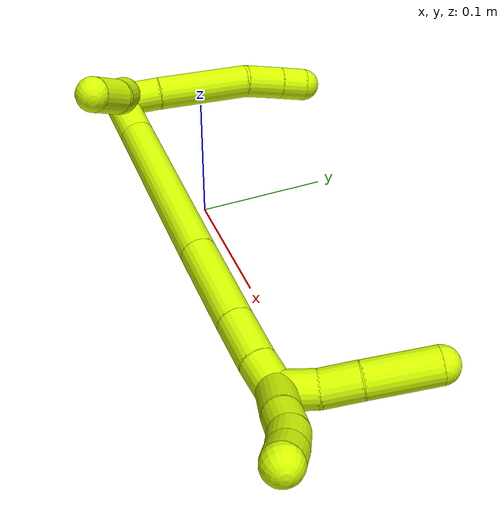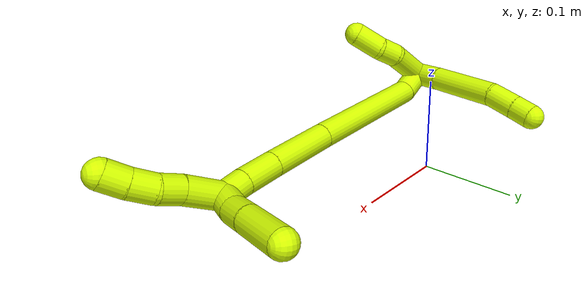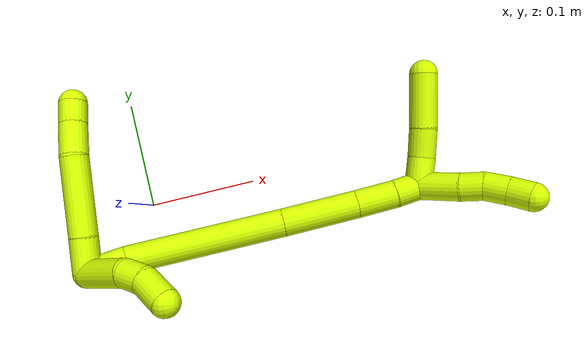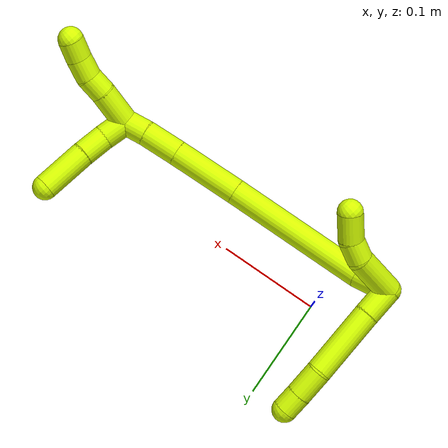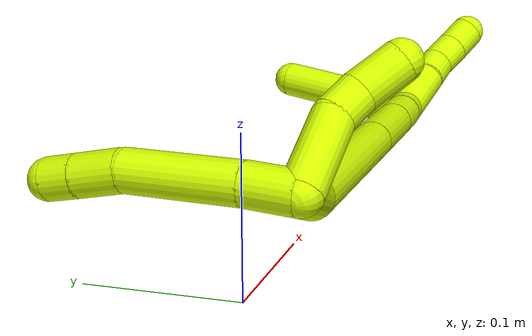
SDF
<sdf version="1.7">
 <world name="default">
  <model name="15">
   <static>0</static>
   <link name="15">
    <collision name="collision-cylinder-e_1_2_8">
     <pose>0.004596 0.014716 -0.001578 -1.67763 0.301126 -0.334545</pose>
     <geometry><cylinder><radius>0.0125</radius><length>0.030995</length></cylinder></geometry>
     <surface>
      <friction><ode><mu>1.16</mu><mu2>1.16</mu2><slip1>0</slip1><slip2>0</slip2></ode></friction>
      <contact><ode><kp>1e+06</kp><kd>1</kd><max_vel>0</max_vel><min_depth>0.001</min_depth></ode></contact>
     </surface>
    </collision>
    <visual name="visual-cylinder-e_1_2_8">
     <pose>0.004596 0.014716 -0.001578 -1.67763 0.301126 -0.334545</pose>
     <geometry><cylinder><radius>0.0125</radius><length>0.030995</length></cylinder></geometry>
     <material><ambient>0.835294 1 0 1</ambient></material>
    </visual>
    <collision name="collision-cylinder-e_2_8_9">
     <pose>0.021019 0.061994 -0.00783 -1.71336 0.345099 -0.396876</pose>
     <geometry><cylinder><radius>0.0125</radius><length>0.069915</length></cylinder></geometry>
     <surface>
      <friction><ode><mu>1.16</mu><mu2>1.16</mu2><slip1>0</slip1><slip2>0</slip2></ode></friction>
      <contact><ode><kp>1e+06</kp><kd>1</kd><max_vel>0</max_vel><min_depth>0.001</min_depth></ode></contact>
     </surface>
    </collision>
    <visual name="visual-cylinder-e_2_8_9">
     <pose>0.021019 0.061994 -0.00783 -1.71336 0.345099 -0.396876</pose>
     <geometry><cylinder><radius>0.0125</radius><length>0.069915</length></cylinder></geometry>
     <material><ambient>0.835294 1 0 1</ambient></material>
    </visual>
    <collision name="collision-cylinder-e_3_9_10">
     <pose>0.040505 0.106696 -0.01476 -1.75457 0.555347 -0.660668</pose>
     <geometry><cylinder><radius>0.0125</radius><length>0.029061</length></cylinder></geometry>
     <surface>
      <friction><ode><mu>1.16</mu><mu2>1.16</mu2><slip1>0</slip1><slip2>0</slip2></ode></friction>
      <contact><ode><kp>1e+06</kp><kd>1</kd><max_vel>0</max_vel><min_depth>0.001</min_depth></ode></contact>
     </surface>
    </collision>
    <visual name="visual-cylinder-e_3_9_10">
     <pose>0.040505 0.106696 -0.01476 -1.75457 0.555347 -0.660668</pose>
     <geometry><cylinder><radius>0.0125</radius><length>0.029061</length></cylinder></geometry>
     <material><ambient>0.835294 1 0 1</ambient></material>
    </visual>
    <collision name="collision-cylinder-e_4_10_6">
     <pose>0.053501 0.127208 -0.018327 -1.72608 0.561751 -0.650418</pose>
     <geometry><cylinder><radius>0.0125</radius><length>0.020029</length></cylinder></geometry>
     <surface>
      <friction><ode><mu>1.16</mu><mu2>1.16</mu2><slip1>0</slip1><slip2>0</slip2></ode></friction>
      <contact><ode><kp>1e+06</kp><kd>1</kd><max_vel>0</max_vel><min_depth>0.001</min_depth></ode></contact>
     </surface>
    </collision>
    <visual name="visual-cylinder-e_4_10_6">
     <pose>0.053501 0.127208 -0.018327 -1.72608 0.561751 -0.650418</pose>
     <geometry><cylinder><radius>0.0125</radius><length>0.020029</length></cylinder></geometry>
     <material><ambient>0.835294 1 0 1</ambient></material>
    </visual>
    <collision name="collision-cylinder-e_1_2_11">
     <pose>-0.009485 0.005227 0.022145 -0.231804 -0.394942 0.046579</pose>
     <geometry><cylinder><radius>0.0125</radius><length>0.049303</length></cylinder></geometry>
     <surface>
      <friction><ode><mu>1.16</mu><mu2>1.16</mu2><slip1>0</slip1><slip2>0</slip2></ode></friction>
      <contact><ode><kp>1e+06</kp><kd>1</kd><max_vel>0</max_vel><min_depth>0.001</min_depth></ode></contact>
     </surface>
    </collision>
    <visual name="visual-cylinder-e_1_2_11">
     <pose>-0.009485 0.005227 0.022145 -0.231804 -0.394942 0.046579</pose>
     <geometry><cylinder><radius>0.0125</radius><length>0.049303</length></cylinder></geometry>
     <material><ambient>0.835294 1 0 1</ambient></material>
    </visual>
    <collision name="collision-cylinder-e_2_11_12">
     <pose>-0.022777 0.009145 0.054236 0.130945 -0.362756 -0.024048</pose>
     <geometry><cylinder><radius>0.0125</radius><length>0.02146</length></cylinder></geometry>
     <surface>
      <friction><ode><mu>1.16</mu><mu2>1.16</mu2><slip1>0</slip1><slip2>0</slip2></ode></friction>
      <contact><ode><kp>1e+06</kp><kd>1</kd><max_vel>0</max_vel><min_depth>0.001</min_depth></ode></contact>
     </surface>
    </collision>
    <visual name="visual-cylinder-e_2_11_12">
     <pose>-0.022777 0.009145 0.054236 0.130945 -0.362756 -0.024048</pose>
     <geometry><cylinder><radius>0.0125</radius><length>0.02146</length></cylinder></geometry>
     <material><ambient>0.835294 1 0 1</ambient></material>
    </visual>
    <collision name="collision-cylinder-e_3_12_5">
     <pose>-0.034575 0.002645 0.075269 0.437811 -0.578316 -0.132175</pose>
     <geometry><cylinder><radius>0.0125</radius><length>0.029237</length></cylinder></geometry>
     <surface>
      <friction><ode><mu>1.16</mu><mu2>1.16</mu2><slip1>0</slip1><slip2>0</slip2></ode></friction>
      <contact><ode><kp>1e+06</kp><kd>1</kd><max_vel>0</max_vel><min_depth>0.001</min_depth></ode></contact>
     </surface>
    </collision>
    <visual name="visual-cylinder-e_3_12_5">
     <pose>-0.034575 0.002645 0.075269 0.437811 -0.578316 -0.132175</pose>
     <geometry><cylinder><radius>0.0125</radius><length>0.029237</length></cylinder></geometry>
     <material><ambient>0.835294 1 0 1</ambient></material>
    </visual>
    <collision name="collision-cylinder-e_1_2_13">
     <pose>0.01039 0.001752 0.013626 -0.127869 0.647533 -0.042961</pose>
     <geometry><cylinder><radius>0.0125</radius><length>0.034449</length></cylinder></geometry>
     <surface>
      <friction><ode><mu>1.16</mu><mu2>1.16</mu2><slip1>0</slip1><slip2>0</slip2></ode></friction>
      <contact><ode><kp>1e+06</kp><kd>1</kd><max_vel>0</max_vel><min_depth>0.001</min_depth></ode></contact>
     </surface>
    </collision>
    <visual name="visual-cylinder-e_1_2_13">
     <pose>0.01039 0.001752 0.013626 -0.127869 0.647533 -0.042961</pose>
     <geometry><cylinder><radius>0.0125</radius><length>0.034449</length></cylinder></geometry>
     <material><ambient>0.835294 1 0 1</ambient></material>
    </visual>
    <collision name="collision-cylinder-e_2_13_14">
     <pose>0.042258 0.012501 0.093287 -0.135418 0.31176 -0.021313</pose>
     <geometry><cylinder><radius>0.0125</radius><length>0.140041</length></cylinder></geometry>
     <surface>
      <friction><ode><mu>1.16</mu><mu2>1.16</mu2><slip1>0</slip1><slip2>0</slip2></ode></friction>
      <contact><ode><kp>1e+06</kp><kd>1</kd><max_vel>0</max_vel><min_depth>0.001</min_depth></ode></contact>
     </surface>
    </collision>
    <visual name="visual-cylinder-e_2_13_14">
     <pose>0.042258 0.012501 0.093287 -0.135418 0.31176 -0.021313</pose>
     <geometry><cylinder><radius>0.0125</radius><length>0.140041</length></cylinder></geometry>
     <material><ambient>0.835294 1 0 1</ambient></material>
    </visual>
    <collision name="collision-cylinder-e_3_14_15">
     <pose>0.074442 0.026029 0.190717 -0.143312 0.325508 -0.023572</pose>
     <geometry><cylinder><radius>0.0125</radius><length>0.066957</length></cylinder></geometry>
     <surface>
      <friction><ode><mu>1.16</mu><mu2>1.16</mu2><slip1>0</slip1><slip2>0</slip2></ode></friction>
      <contact><ode><kp>1e+06</kp><kd>1</kd><max_vel>0</max_vel><min_depth>0.001</min_depth></ode></contact>
     </surface>
    </collision>
    <visual name="visual-cylinder-e_3_14_15">
     <pose>0.074442 0.026029 0.190717 -0.143312 0.325508 -0.023572</pose>
     <geometry><cylinder><radius>0.0125</radius><length>0.066957</length></cylinder></geometry>
     <material><ambient>0.835294 1 0 1</ambient></material>
    </visual>
    <collision name="collision-cylinder-e_4_15_16">
     <pose>0.091052 0.033171 0.238705 -0.156105 0.337993 -0.026688</pose>
     <geometry><cylinder><radius>0.0125</radius><length>0.035608</length></cylinder></geometry>
     <surface>
      <friction><ode><mu>1.16</mu><mu2>1.16</mu2><slip1>0</slip1><slip2>0</slip2></ode></friction>
      <contact><ode><kp>1e+06</kp><kd>1</kd><max_vel>0</max_vel><min_depth>0.001</min_depth></ode></contact>
     </surface>
    </collision>
    <visual name="visual-cylinder-e_4_15_16">
     <pose>0.091052 0.033171 0.238705 -0.156105 0.337993 -0.026688</pose>
     <geometry><cylinder><radius>0.0125</radius><length>0.035608</length></cylinder></geometry>
     <material><ambient>0.835294 1 0 1</ambient></material>
    </visual>
    <collision name="collision-cylinder-e_5_16_1">
     <pose>0.101366 0.038044 0.265644 -0.215223 0.394609 -0.043184</pose>
     <geometry><cylinder><radius>0.0125</radius><length>0.022944</length></cylinder></geometry>
     <surface>
      <friction><ode><mu>1.16</mu><mu2>1.16</mu2><slip1>0</slip1><slip2>0</slip2></ode></friction>
      <contact><ode><kp>1e+06</kp><kd>1</kd><max_vel>0</max_vel><min_depth>0.001</min_depth></ode></contact>
     </surface>
    </collision>
    <visual name="visual-cylinder-e_5_16_1">
     <pose>0.101366 0.038044 0.265644 -0.215223 0.394609 -0.043184</pose>
     <geometry><cylinder><radius>0.0125</radius><length>0.022944</length></cylinder></geometry>
     <material><ambient>0.835294 1 0 1</ambient></material>
    </visual>
    <collision name="collision-cylinder-e_1_1_17">
     <pose>0.100848 0.041119 0.294225 -0.044549 -0.263715 0.005909</pose>
     <geometry><cylinder><radius>0.0125</radius><length>0.037815</length></cylinder></geometry>
     <surface>
      <friction><ode><mu>1.16</mu><mu2>1.16</mu2><slip1>0</slip1><slip2>0</slip2></ode></friction>
      <contact><ode><kp>1e+06</kp><kd>1</kd><max_vel>0</max_vel><min_depth>0.001</min_depth></ode></contact>
     </surface>
    </collision>
    <visual name="visual-cylinder-e_1_1_17">
     <pose>0.100848 0.041119 0.294225 -0.044549 -0.263715 0.005909</pose>
     <geometry><cylinder><radius>0.0125</radius><length>0.037815</length></cylinder></geometry>
     <material><ambient>0.835294 1 0 1</ambient></material>
    </visual>
    <collision name="collision-cylinder-e_2_17_18">
     <pose>0.094494 0.042781 0.322515 -0.084335 -0.140315 0.00593</pose>
     <geometry><cylinder><radius>0.0125</radius><length>0.020379</length></cylinder></geometry>
     <surface>
      <friction><ode><mu>1.16</mu><mu2>1.16</mu2><slip1>0</slip1><slip2>0</slip2></ode></friction>
      <contact><ode><kp>1e+06</kp><kd>1</kd><max_vel>0</max_vel><min_depth>0.001</min_depth></ode></contact>
     </surface>
    </collision>
    <visual name="visual-cylinder-e_2_17_18">
     <pose>0.094494 0.042781 0.322515 -0.084335 -0.140315 0.00593</pose>
     <geometry><cylinder><radius>0.0125</radius><length>0.020379</length></cylinder></geometry>
     <material><ambient>0.835294 1 0 1</ambient></material>
    </visual>
    <collision name="collision-cylinder-e_3_18_19">
     <pose>0.089672 0.042451 0.342666 0.11634 -0.322499 -0.018945</pose>
     <geometry><cylinder><radius>0.0125</radius><length>0.021437</length></cylinder></geometry>
     <surface>
      <friction><ode><mu>1.16</mu><mu2>1.16</mu2><slip1>0</slip1><slip2>0</slip2></ode></friction>
      <contact><ode><kp>1e+06</kp><kd>1</kd><max_vel>0</max_vel><min_depth>0.001</min_depth></ode></contact>
     </surface>
    </collision>
    <visual name="visual-cylinder-e_3_18_19">
     <pose>0.089672 0.042451 0.342666 0.11634 -0.322499 -0.018945</pose>
     <geometry><cylinder><radius>0.0125</radius><length>0.021437</length></cylinder></geometry>
     <material><ambient>0.835294 1 0 1</ambient></material>
    </visual>
    <collision name="collision-cylinder-e_4_19_4">
     <pose>0.081966 0.040008 0.361904 0.137296 -0.43689 -0.030523</pose>
     <geometry><cylinder><radius>0.0125</radius><length>0.020369</length></cylinder></geometry>
     <surface>
      <friction><ode><mu>1.16</mu><mu2>1.16</mu2><slip1>0</slip1><slip2>0</slip2></ode></friction>
      <contact><ode><kp>1e+06</kp><kd>1</kd><max_vel>0</max_vel><min_depth>0.001</min_depth></ode></contact>
     </surface>
    </collision>
    <visual name="visual-cylinder-e_4_19_4">
     <pose>0.081966 0.040008 0.361904 0.137296 -0.43689 -0.030523</pose>
     <geometry><cylinder><radius>0.0125</radius><length>0.020369</length></cylinder></geometry>
     <material><ambient>0.835294 1 0 1</ambient></material>
    </visual>
    <collision name="collision-cylinder-e_1_1_20">
     <pose>0.110553 0.052159 0.277482 -1.44557 0.380376 -0.336392</pose>
     <geometry><cylinder><radius>0.0125</radius><length>0.025733</length></cylinder></geometry>
     <surface>
      <friction><ode><mu>1.16</mu><mu2>1.16</mu2><slip1>0</slip1><slip2>0</slip2></ode></friction>
      <contact><ode><kp>1e+06</kp><kd>1</kd><max_vel>0</max_vel><min_depth>0.001</min_depth></ode></contact>
     </surface>
    </collision>
    <visual name="visual-cylinder-e_1_1_20">
     <pose>0.110553 0.052159 0.277482 -1.44557 0.380376 -0.336392</pose>
     <geometry><cylinder><radius>0.0125</radius><length>0.025733</length></cylinder></geometry>
     <material><ambient>0.835294 1 0 1</ambient></material>
    </visual>
    <collision name="collision-cylinder-e_2_20_21">
     <pose>0.117885 0.076744 0.279919 -1.49674 0.197514 -0.183485</pose>
     <geometry><cylinder><radius>0.0125</radius><length>0.02604</length></cylinder></geometry>
     <surface>
      <friction><ode><mu>1.16</mu><mu2>1.16</mu2><slip1>0</slip1><slip2>0</slip2></ode></friction>
      <contact><ode><kp>1e+06</kp><kd>1</kd><max_vel>0</max_vel><min_depth>0.001</min_depth></ode></contact>
     </surface>
    </collision>
    <visual name="visual-cylinder-e_2_20_21">
     <pose>0.117885 0.076744 0.279919 -1.49674 0.197514 -0.183485</pose>
     <geometry><cylinder><radius>0.0125</radius><length>0.02604</length></cylinder></geometry>
     <material><ambient>0.835294 1 0 1</ambient></material>
    </visual>
    <collision name="collision-cylinder-e_3_21_3">
     <pose>0.126495 0.112813 0.281278 -1.55304 0.253822 -0.249401</pose>
     <geometry><cylinder><radius>0.0125</radius><length>0.048227</length></cylinder></geometry>
     <surface>
      <friction><ode><mu>1.16</mu><mu2>1.16</mu2><slip1>0</slip1><slip2>0</slip2></ode></friction>
      <contact><ode><kp>1e+06</kp><kd>1</kd><max_vel>0</max_vel><min_depth>0.001</min_depth></ode></contact>
     </surface>
    </collision>
    <visual name="visual-cylinder-e_3_21_3">
     <pose>0.126495 0.112813 0.281278 -1.55304 0.253822 -0.249401</pose>
     <geometry><cylinder><radius>0.0125</radius><length>0.048227</length></cylinder></geometry>
     <material><ambient>0.835294 1 0 1</ambient></material>
    </visual>
    <collision name="collision-sphere-3">
     <pose>0.13255 0.13615 0.281692 0 -0 0</pose>
     <geometry><sphere><radius>0.0125</radius></sphere></geometry>
     <surface>
      <friction><ode><mu>1.16</mu><mu2>1.16</mu2><slip1>0</slip1><slip2>0</slip2></ode></friction>
      <contact><ode><kp>1e+06</kp><kd>1</kd><max_vel>0</max_vel><min_depth>0.001</min_depth></ode></contact>
     </surface>
    </collision>
    <visual name="visual-sphere-3">
     <pose>0.13255 0.13615 0.281692 0 -0 0</pose>
     <geometry><sphere><radius>0.0125</radius></sphere></geometry>
     <material><ambient>0.835294 1 0 1</ambient></material>
    </visual>
    <collision name="collision-sphere-21">
     <pose>0.12044 0.089476 0.280863 0 -0 0</pose>
     <geometry><sphere><radius>0.0125</radius></sphere></geometry>
     <surface>
      <friction><ode><mu>1.16</mu><mu2>1.16</mu2><slip1>0</slip1><slip2>0</slip2></ode></friction>
      <contact><ode><kp>1e+06</kp><kd>1</kd><max_vel>0</max_vel><min_depth>0.001</min_depth></ode></contact>
     </surface>
    </collision>
    <visual name="visual-sphere-21">
     <pose>0.12044 0.089476 0.280863 0 -0 0</pose>
     <geometry><sphere><radius>0.0125</radius></sphere></geometry>
     <material><ambient>0.835294 1 0 1</ambient></material>
    </visual>
    <collision name="collision-sphere-20">
     <pose>0.11533 0.064012 0.278974 0 -0 0</pose>
     <geometry><sphere><radius>0.0125</radius></sphere></geometry>
     <surface>
      <friction><ode><mu>1.16</mu><mu2>1.16</mu2><slip1>0</slip1><slip2>0</slip2></ode></friction>
      <contact><ode><kp>1e+06</kp><kd>1</kd><max_vel>0</max_vel><min_depth>0.001</min_depth></ode></contact>
     </surface>
    </collision>
    <visual name="visual-sphere-20">
     <pose>0.11533 0.064012 0.278974 0 -0 0</pose>
     <geometry><sphere><radius>0.0125</radius></sphere></geometry>
     <material><ambient>0.835294 1 0 1</ambient></material>
    </visual>
    <collision name="collision-sphere-4">
     <pose>0.077656 0.038745 0.371045 0 -0 0</pose>
     <geometry><sphere><radius>0.0125</radius></sphere></geometry>
     <surface>
      <friction><ode><mu>1.16</mu><mu2>1.16</mu2><slip1>0</slip1><slip2>0</slip2></ode></friction>
      <contact><ode><kp>1e+06</kp><kd>1</kd><max_vel>0</max_vel><min_depth>0.001</min_depth></ode></contact>
     </surface>
    </collision>
    <visual name="visual-sphere-4">
     <pose>0.077656 0.038745 0.371045 0 -0 0</pose>
     <geometry><sphere><radius>0.0125</radius></sphere></geometry>
     <material><ambient>0.835294 1 0 1</ambient></material>
    </visual>
    <collision name="collision-sphere-11">
     <pose>-0.018969 0.010455 0.04429 0 -0 0</pose>
     <geometry><sphere><radius>0.0125</radius></sphere></geometry>
     <surface>
      <friction><ode><mu>1.16</mu><mu2>1.16</mu2><slip1>0</slip1><slip2>0</slip2></ode></friction>
      <contact><ode><kp>1e+06</kp><kd>1</kd><max_vel>0</max_vel><min_depth>0.001</min_depth></ode></contact>
     </surface>
    </collision>
    <visual name="visual-sphere-11">
     <pose>-0.018969 0.010455 0.04429 0 -0 0</pose>
     <geometry><sphere><radius>0.0125</radius></sphere></geometry>
     <material><ambient>0.835294 1 0 1</ambient></material>
    </visual>
    <collision name="collision-sphere-6">
     <pose>0.058835 0.135582 -0.019638 0 -0 0</pose>
     <geometry><sphere><radius>0.0125</radius></sphere></geometry>
     <surface>
      <friction><ode><mu>1.16</mu><mu2>1.16</mu2><slip1>0</slip1><slip2>0</slip2></ode></friction>
      <contact><ode><kp>1e+06</kp><kd>1</kd><max_vel>0</max_vel><min_depth>0.001</min_depth></ode></contact>
     </surface>
    </collision>
    <visual name="visual-sphere-6">
     <pose>0.058835 0.135582 -0.019638 0 -0 0</pose>
     <geometry><sphere><radius>0.0125</radius></sphere></geometry>
     <material><ambient>0.835294 1 0 1</ambient></material>
    </visual>
    <collision name="collision-sphere-10">
     <pose>0.048166 0.118835 -0.017016 0 -0 0</pose>
     <geometry><sphere><radius>0.0125</radius></sphere></geometry>
     <surface>
      <friction><ode><mu>1.16</mu><mu2>1.16</mu2><slip1>0</slip1><slip2>0</slip2></ode></friction>
      <contact><ode><kp>1e+06</kp><kd>1</kd><max_vel>0</max_vel><min_depth>0.001</min_depth></ode></contact>
     </surface>
    </collision>
    <visual name="visual-sphere-10">
     <pose>0.048166 0.118835 -0.017016 0 -0 0</pose>
     <geometry><sphere><radius>0.0125</radius></sphere></geometry>
     <material><ambient>0.835294 1 0 1</ambient></material>
    </visual>
    <collision name="collision-sphere-9">
     <pose>0.032844 0.094557 -0.012504 0 -0 0</pose>
     <geometry><sphere><radius>0.0125</radius></sphere></geometry>
     <surface>
      <friction><ode><mu>1.16</mu><mu2>1.16</mu2><slip1>0</slip1><slip2>0</slip2></ode></friction>
      <contact><ode><kp>1e+06</kp><kd>1</kd><max_vel>0</max_vel><min_depth>0.001</min_depth></ode></contact>
     </surface>
    </collision>
    <visual name="visual-sphere-9">
     <pose>0.032844 0.094557 -0.012504 0 -0 0</pose>
     <geometry><sphere><radius>0.0125</radius></sphere></geometry>
     <material><ambient>0.835294 1 0 1</ambient></material>
    </visual>
    <collision name="collision-sphere-2">
     <geometry><sphere><radius>0.0125</radius></sphere></geometry>
     <surface>
      <friction><ode><mu>1.16</mu><mu2>1.16</mu2><slip1>0</slip1><slip2>0</slip2></ode></friction>
      <contact><ode><kp>1e+06</kp><kd>1</kd><max_vel>0</max_vel><min_depth>0.001</min_depth></ode></contact>
     </surface>
    </collision>
    <visual name="visual-sphere-2">
     <geometry><sphere><radius>0.0125</radius></sphere></geometry>
     <material><ambient>0.835294 1 0 1</ambient></material>
    </visual>
    <collision name="collision-sphere-19">
     <pose>0.086275 0.041271 0.352763 0 -0 0</pose>
     <geometry><sphere><radius>0.0125</radius></sphere></geometry>
     <surface>
      <friction><ode><mu>1.16</mu><mu2>1.16</mu2><slip1>0</slip1><slip2>0</slip2></ode></friction>
      <contact><ode><kp>1e+06</kp><kd>1</kd><max_vel>0</max_vel><min_depth>0.001</min_depth></ode></contact>
     </surface>
    </collision>
    <visual name="visual-sphere-19">
     <pose>0.086275 0.041271 0.352763 0 -0 0</pose>
     <geometry><sphere><radius>0.0125</radius></sphere></geometry>
     <material><ambient>0.835294 1 0 1</ambient></material>
    </visual>
    <collision name="collision-sphere-8">
     <pose>0.009193 0.029432 -0.003156 0 -0 0</pose>
     <geometry><sphere><radius>0.0125</radius></sphere></geometry>
     <surface>
      <friction><ode><mu>1.16</mu><mu2>1.16</mu2><slip1>0</slip1><slip2>0</slip2></ode></friction>
      <contact><ode><kp>1e+06</kp><kd>1</kd><max_vel>0</max_vel><min_depth>0.001</min_depth></ode></contact>
     </surface>
    </collision>
    <visual name="visual-sphere-8">
     <pose>0.009193 0.029432 -0.003156 0 -0 0</pose>
     <geometry><sphere><radius>0.0125</radius></sphere></geometry>
     <material><ambient>0.835294 1 0 1</ambient></material>
    </visual>
    <collision name="collision-sphere-12">
     <pose>-0.026585 0.007835 0.064182 0 -0 0</pose>
     <geometry><sphere><radius>0.0125</radius></sphere></geometry>
     <surface>
      <friction><ode><mu>1.16</mu><mu2>1.16</mu2><slip1>0</slip1><slip2>0</slip2></ode></friction>
      <contact><ode><kp>1e+06</kp><kd>1</kd><max_vel>0</max_vel><min_depth>0.001</min_depth></ode></contact>
     </surface>
    </collision>
    <visual name="visual-sphere-12">
     <pose>-0.026585 0.007835 0.064182 0 -0 0</pose>
     <geometry><sphere><radius>0.0125</radius></sphere></geometry>
     <material><ambient>0.835294 1 0 1</ambient></material>
    </visual>
    <collision name="collision-sphere-5">
     <pose>-0.042566 -0.002545 0.086355 0 -0 0</pose>
     <geometry><sphere><radius>0.0125</radius></sphere></geometry>
     <surface>
      <friction><ode><mu>1.16</mu><mu2>1.16</mu2><slip1>0</slip1><slip2>0</slip2></ode></friction>
      <contact><ode><kp>1e+06</kp><kd>1</kd><max_vel>0</max_vel><min_depth>0.001</min_depth></ode></contact>
     </surface>
    </collision>
    <visual name="visual-sphere-5">
     <pose>-0.042566 -0.002545 0.086355 0 -0 0</pose>
     <geometry><sphere><radius>0.0125</radius></sphere></geometry>
     <material><ambient>0.835294 1 0 1</ambient></material>
    </visual>
    <collision name="collision-sphere-13">
     <pose>0.02078 0.003504 0.027251 0 -0 0</pose>
     <geometry><sphere><radius>0.0125</radius></sphere></geometry>
     <surface>
      <friction><ode><mu>1.16</mu><mu2>1.16</mu2><slip1>0</slip1><slip2>0</slip2></ode></friction>
      <contact><ode><kp>1e+06</kp><kd>1</kd><max_vel>0</max_vel><min_depth>0.001</min_depth></ode></contact>
     </surface>
    </collision>
    <visual name="visual-sphere-13">
     <pose>0.02078 0.003504 0.027251 0 -0 0</pose>
     <geometry><sphere><radius>0.0125</radius></sphere></geometry>
     <material><ambient>0.835294 1 0 1</ambient></material>
    </visual>
    <collision name="collision-sphere-14">
     <pose>0.063736 0.021498 0.159322 0 -0 0</pose>
     <geometry><sphere><radius>0.0125</radius></sphere></geometry>
     <surface>
      <friction><ode><mu>1.16</mu><mu2>1.16</mu2><slip1>0</slip1><slip2>0</slip2></ode></friction>
      <contact><ode><kp>1e+06</kp><kd>1</kd><max_vel>0</max_vel><min_depth>0.001</min_depth></ode></contact>
     </surface>
    </collision>
    <visual name="visual-sphere-14">
     <pose>0.063736 0.021498 0.159322 0 -0 0</pose>
     <geometry><sphere><radius>0.0125</radius></sphere></geometry>
     <material><ambient>0.835294 1 0 1</ambient></material>
    </visual>
    <collision name="collision-sphere-15">
     <pose>0.085148 0.030559 0.222112 0 -0 0</pose>
     <geometry><sphere><radius>0.0125</radius></sphere></geometry>
     <surface>
      <friction><ode><mu>1.16</mu><mu2>1.16</mu2><slip1>0</slip1><slip2>0</slip2></ode></friction>
      <contact><ode><kp>1e+06</kp><kd>1</kd><max_vel>0</max_vel><min_depth>0.001</min_depth></ode></contact>
     </surface>
    </collision>
    <visual name="visual-sphere-15">
     <pose>0.085148 0.030559 0.222112 0 -0 0</pose>
     <geometry><sphere><radius>0.0125</radius></sphere></geometry>
     <material><ambient>0.835294 1 0 1</ambient></material>
    </visual>
    <collision name="collision-sphere-16">
     <pose>0.096956 0.035782 0.255298 0 -0 0</pose>
     <geometry><sphere><radius>0.0125</radius></sphere></geometry>
     <surface>
      <friction><ode><mu>1.16</mu><mu2>1.16</mu2><slip1>0</slip1><slip2>0</slip2></ode></friction>
      <contact><ode><kp>1e+06</kp><kd>1</kd><max_vel>0</max_vel><min_depth>0.001</min_depth></ode></contact>
     </surface>
    </collision>
    <visual name="visual-sphere-16">
     <pose>0.096956 0.035782 0.255298 0 -0 0</pose>
     <geometry><sphere><radius>0.0125</radius></sphere></geometry>
     <material><ambient>0.835294 1 0 1</ambient></material>
    </visual>
    <collision name="collision-sphere-1">
     <pose>0.105776 0.040306 0.27599 0 -0 0</pose>
     <geometry><sphere><radius>0.0125</radius></sphere></geometry>
     <surface>
      <friction><ode><mu>1.16</mu><mu2>1.16</mu2><slip1>0</slip1><slip2>0</slip2></ode></friction>
      <contact><ode><kp>1e+06</kp><kd>1</kd><max_vel>0</max_vel><min_depth>0.001</min_depth></ode></contact>
     </surface>
    </collision>
    <visual name="visual-sphere-1">
     <pose>0.105776 0.040306 0.27599 0 -0 0</pose>
     <geometry><sphere><radius>0.0125</radius></sphere></geometry>
     <material><ambient>0.835294 1 0 1</ambient></material>
    </visual>
    <collision name="collision-sphere-18">
     <pose>0.093069 0.043631 0.332568 0 -0 0</pose>
     <geometry><sphere><radius>0.0125</radius></sphere></geometry>
     <surface>
      <friction><ode><mu>1.16</mu><mu2>1.16</mu2><slip1>0</slip1><slip2>0</slip2></ode></friction>
      <contact><ode><kp>1e+06</kp><kd>1</kd><max_vel>0</max_vel><min_depth>0.001</min_depth></ode></contact>
     </surface>
    </collision>
    <visual name="visual-sphere-18">
     <pose>0.093069 0.043631 0.332568 0 -0 0</pose>
     <geometry><sphere><radius>0.0125</radius></sphere></geometry>
     <material><ambient>0.835294 1 0 1</ambient></material>
    </visual>
    <collision name="collision-sphere-17">
     <pose>0.095919 0.041931 0.312461 0 -0 0</pose>
     <geometry><sphere><radius>0.0125</radius></sphere></geometry>
     <surface>
      <friction><ode><mu>1.16</mu><mu2>1.16</mu2><slip1>0</slip1><slip2>0</slip2></ode></friction>
      <contact><ode><kp>1e+06</kp><kd>1</kd><max_vel>0</max_vel><min_depth>0.001</min_depth></ode></contact>
     </surface>
    </collision>
    <visual name="visual-sphere-17">
     <pose>0.095919 0.041931 0.312461 0 -0 0</pose>
     <geometry><sphere><radius>0.0125</radius></sphere></geometry>
     <material><ambient>0.835294 1 0 1</ambient></material>
    </visual>
    <inertial>
     <pose>0.053424 0.039348 0.139164 0 -0 0</pose>
     <mass>0.75</mass>
     <inertia>
      <ixx>0.000319</ixx>
      <ixy>0</ixy>
      <ixz>0</ixz>
      <iyy>0.000297</iyy>
      <iyz>0</iyz>
      <izz>-0.000148</izz>
     </inertia>
    </inertial>
   </link>
   <pose>-0.05074 -0.049063 0.085391 1.0453 1.15417 0.850009</pose>
  </model>
 </world>
</sdf>
